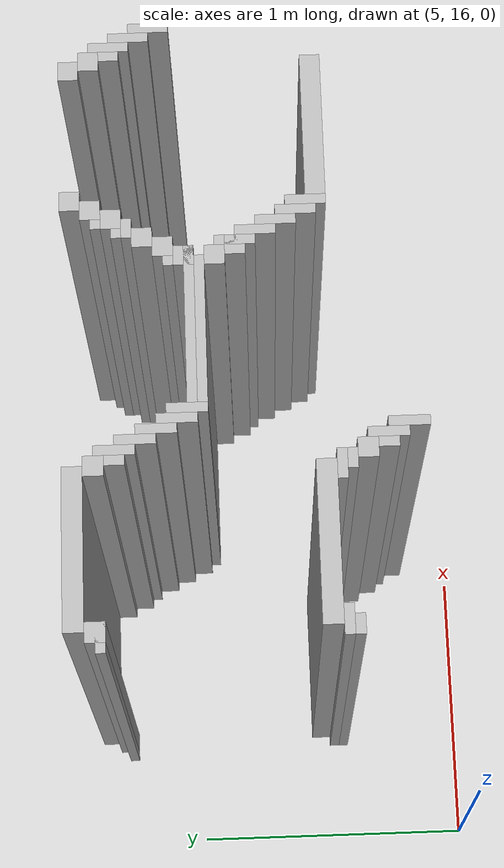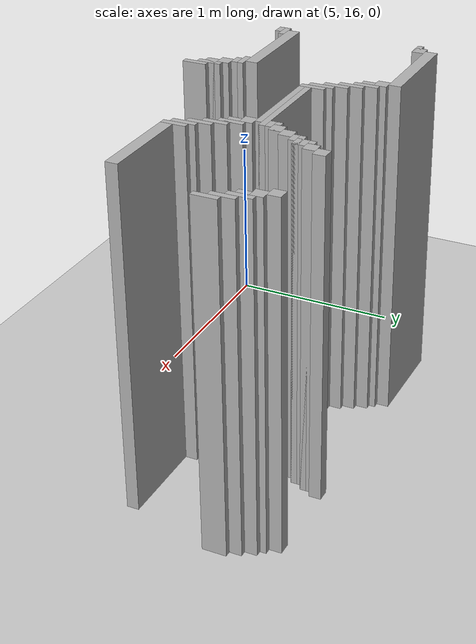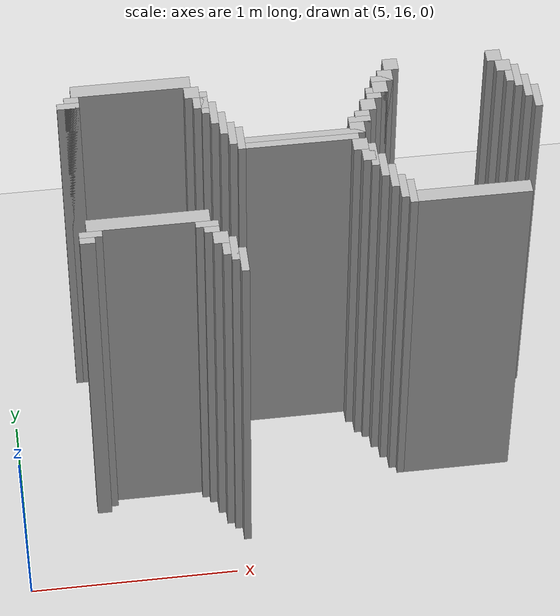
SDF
<sdf version="1.6">
 <world name="slam_world">
  <model name="ground_plane">
   <static>true</static>
   <link name="link">
    <collision name="collision">
     <geometry><plane><normal>0 0 1</normal><size>100 100</size></plane></geometry>
    </collision>
    <visual name="visual">
     <geometry><plane><normal>0 0 1</normal><size>100 100</size></plane></geometry>
     <material>
      <ambient>0.8 0.8 0.8 1</ambient>
      <diffuse>0.8 0.8 0.8 1</diffuse>
      <specular>0.8 0.8 0.8 1</specular>
     </material>
    </visual>
   </link>
  </model>
  <model name="wall_3">
   <static>true</static>
   <pose>5.672853828306264 17.366589327146173 1.0 0 0 0</pose>
   <link name="link">
    <collision name="collision">
     <geometry><box><size>0.5568445475638051 0.06960556844547564 2.0</size></box></geometry>
    </collision>
    <visual name="visual">
     <geometry><box><size>0.5568445475638051 0.06960556844547564 2.0</size></box></geometry>
     <material><ambient>0.5 0.5 0.5 1</ambient><diffuse>0.7 0.7 0.7 1</diffuse></material>
    </visual>
   </link>
  </model>
  <model name="wall_4">
   <static>true</static>
   <pose>6.890951276102088 17.366589327146173 1.0 0 0 0</pose>
   <link name="link">
    <collision name="collision">
     <geometry><box><size>0.06960556844547564 0.06960556844547564 2.0</size></box></geometry>
    </collision>
    <visual name="visual">
     <geometry><box><size>0.06960556844547564 0.06960556844547564 2.0</size></box></geometry>
     <material><ambient>0.5 0.5 0.5 1</ambient><diffuse>0.7 0.7 0.7 1</diffuse></material>
    </visual>
   </link>
  </model>
  <model name="wall_5">
   <static>true</static>
   <pose>7.378190255220417 17.366589327146173 1.0 0 0 0</pose>
   <link name="link">
    <collision name="collision">
     <geometry><box><size>0.06960556844547564 0.06960556844547564 2.0</size></box></geometry>
    </collision>
    <visual name="visual">
     <geometry><box><size>0.06960556844547564 0.06960556844547564 2.0</size></box></geometry>
     <material><ambient>0.5 0.5 0.5 1</ambient><diffuse>0.7 0.7 0.7 1</diffuse></material>
    </visual>
   </link>
  </model>
  <model name="wall_17">
   <static>true</static>
   <pose>5.3944315545243615 17.296983758700694 1.0 0 0 0</pose>
   <link name="link">
    <collision name="collision">
     <geometry><box><size>0.06960556844547564 0.06960556844547564 2.0</size></box></geometry>
    </collision>
    <visual name="visual">
     <geometry><box><size>0.06960556844547564 0.06960556844547564 2.0</size></box></geometry>
     <material><ambient>0.5 0.5 0.5 1</ambient><diffuse>0.7 0.7 0.7 1</diffuse></material>
    </visual>
   </link>
  </model>
  <model name="wall_18">
   <static>true</static>
   <pose>5.951276102088166 17.296983758700694 1.0 0 0 0</pose>
   <link name="link">
    <collision name="collision">
     <geometry><box><size>0.06960556844547564 0.06960556844547564 2.0</size></box></geometry>
    </collision>
    <visual name="visual">
     <geometry><box><size>0.06960556844547564 0.06960556844547564 2.0</size></box></geometry>
     <material><ambient>0.5 0.5 0.5 1</ambient><diffuse>0.7 0.7 0.7 1</diffuse></material>
    </visual>
   </link>
  </model>
  <model name="wall_19">
   <static>true</static>
   <pose>6.85614849187935 17.296983758700694 1.0 0 0 0</pose>
   <link name="link">
    <collision name="collision">
     <geometry><box><size>0.06960556844547564 0.06960556844547564 2.0</size></box></geometry>
    </collision>
    <visual name="visual">
     <geometry><box><size>0.06960556844547564 0.06960556844547564 2.0</size></box></geometry>
     <material><ambient>0.5 0.5 0.5 1</ambient><diffuse>0.7 0.7 0.7 1</diffuse></material>
    </visual>
   </link>
  </model>
  <model name="wall_20">
   <static>true</static>
   <pose>7.412993039443156 17.296983758700694 1.0 0 0 0</pose>
   <link name="link">
    <collision name="collision">
     <geometry><box><size>0.06960556844547564 0.06960556844547564 2.0</size></box></geometry>
    </collision>
    <visual name="visual">
     <geometry><box><size>0.06960556844547564 0.06960556844547564 2.0</size></box></geometry>
     <material><ambient>0.5 0.5 0.5 1</ambient><diffuse>0.7 0.7 0.7 1</diffuse></material>
    </visual>
   </link>
  </model>
  <model name="wall_37">
   <static>true</static>
   <pose>5.377030162412993 17.279582366589327 1.0 0 0 0</pose>
   <link name="link">
    <collision name="collision">
     <geometry><box><size>0.10440835266821345 0.03480278422273782 2.0</size></box></geometry>
    </collision>
    <visual name="visual">
     <geometry><box><size>0.10440835266821345 0.03480278422273782 2.0</size></box></geometry>
     <material><ambient>0.5 0.5 0.5 1</ambient><diffuse>0.7 0.7 0.7 1</diffuse></material>
    </visual>
   </link>
  </model>
  <model name="wall_38">
   <static>true</static>
   <pose>6.003480278422273 17.22737819025522 1.0 0 0 0</pose>
   <link name="link">
    <collision name="collision">
     <geometry><box><size>0.03480278422273782 0.13921113689095127 2.0</size></box></geometry>
    </collision>
    <visual name="visual">
     <geometry><box><size>0.03480278422273782 0.13921113689095127 2.0</size></box></geometry>
     <material><ambient>0.5 0.5 0.5 1</ambient><diffuse>0.7 0.7 0.7 1</diffuse></material>
    </visual>
   </link>
  </model>
  <model name="wall_39">
   <static>true</static>
   <pose>6.838747099767981 17.279582366589327 1.0 0 0 0</pose>
   <link name="link">
    <collision name="collision">
     <geometry><box><size>0.10440835266821345 0.03480278422273782 2.0</size></box></geometry>
    </collision>
    <visual name="visual">
     <geometry><box><size>0.10440835266821345 0.03480278422273782 2.0</size></box></geometry>
     <material><ambient>0.5 0.5 0.5 1</ambient><diffuse>0.7 0.7 0.7 1</diffuse></material>
    </visual>
   </link>
  </model>
  <model name="wall_40">
   <static>true</static>
   <pose>7.465197215777262 17.22737819025522 1.0 0 0 0</pose>
   <link name="link">
    <collision name="collision">
     <geometry><box><size>0.03480278422273782 0.13921113689095127 2.0</size></box></geometry>
    </collision>
    <visual name="visual">
     <geometry><box><size>0.03480278422273782 0.13921113689095127 2.0</size></box></geometry>
     <material><ambient>0.5 0.5 0.5 1</ambient><diffuse>0.7 0.7 0.7 1</diffuse></material>
    </visual>
   </link>
  </model>
  <model name="wall_58">
   <static>true</static>
   <pose>5.986078886310905 17.22737819025522 1.0 0 0 0</pose>
   <link name="link">
    <collision name="collision">
     <geometry><box><size>0.06960556844547564 0.06960556844547564 2.0</size></box></geometry>
    </collision>
    <visual name="visual">
     <geometry><box><size>0.06960556844547564 0.06960556844547564 2.0</size></box></geometry>
     <material><ambient>0.5 0.5 0.5 1</ambient><diffuse>0.7 0.7 0.7 1</diffuse></material>
    </visual>
   </link>
  </model>
  <model name="wall_59">
   <static>true</static>
   <pose>6.821345707656612 17.22737819025522 1.0 0 0 0</pose>
   <link name="link">
    <collision name="collision">
     <geometry><box><size>0.06960556844547564 0.06960556844547564 2.0</size></box></geometry>
    </collision>
    <visual name="visual">
     <geometry><box><size>0.06960556844547564 0.06960556844547564 2.0</size></box></geometry>
     <material><ambient>0.5 0.5 0.5 1</ambient><diffuse>0.7 0.7 0.7 1</diffuse></material>
    </visual>
   </link>
  </model>
  <model name="wall_60">
   <static>true</static>
   <pose>7.447795823665893 17.22737819025522 1.0 0 0 0</pose>
   <link name="link">
    <collision name="collision">
     <geometry><box><size>0.06960556844547564 0.06960556844547564 2.0</size></box></geometry>
    </collision>
    <visual name="visual">
     <geometry><box><size>0.06960556844547564 0.06960556844547564 2.0</size></box></geometry>
     <material><ambient>0.5 0.5 0.5 1</ambient><diffuse>0.7 0.7 0.7 1</diffuse></material>
    </visual>
   </link>
  </model>
  <model name="wall_78">
   <static>true</static>
   <pose>6.038283062645012 17.157772621809745 1.0 0 0 0</pose>
   <link name="link">
    <collision name="collision">
     <geometry><box><size>0.03480278422273782 0.13921113689095127 2.0</size></box></geometry>
    </collision>
    <visual name="visual">
     <geometry><box><size>0.03480278422273782 0.13921113689095127 2.0</size></box></geometry>
     <material><ambient>0.5 0.5 0.5 1</ambient><diffuse>0.7 0.7 0.7 1</diffuse></material>
    </visual>
   </link>
  </model>
  <model name="wall_79">
   <static>true</static>
   <pose>6.803944315545244 17.209976798143853 1.0 0 0 0</pose>
   <link name="link">
    <collision name="collision">
     <geometry><box><size>0.10440835266821345 0.03480278422273782 2.0</size></box></geometry>
    </collision>
    <visual name="visual">
     <geometry><box><size>0.10440835266821345 0.03480278422273782 2.0</size></box></geometry>
     <material><ambient>0.5 0.5 0.5 1</ambient><diffuse>0.7 0.7 0.7 1</diffuse></material>
    </visual>
   </link>
  </model>
  <model name="wall_80">
   <static>true</static>
   <pose>7.5 17.157772621809745 1.0 0 0 0</pose>
   <link name="link">
    <collision name="collision">
     <geometry><box><size>0.03480278422273782 0.13921113689095127 2.0</size></box></geometry>
    </collision>
    <visual name="visual">
     <geometry><box><size>0.03480278422273782 0.13921113689095127 2.0</size></box></geometry>
     <material><ambient>0.5 0.5 0.5 1</ambient><diffuse>0.7 0.7 0.7 1</diffuse></material>
    </visual>
   </link>
  </model>
  <model name="wall_95">
   <static>true</static>
   <pose>6.786542923433874 17.17517401392111 1.0 0 0 0</pose>
   <link name="link">
    <collision name="collision">
     <geometry><box><size>0.06960556844547564 0.03480278422273782 2.0</size></box></geometry>
    </collision>
    <visual name="visual">
     <geometry><box><size>0.06960556844547564 0.03480278422273782 2.0</size></box></geometry>
     <material><ambient>0.5 0.5 0.5 1</ambient><diffuse>0.7 0.7 0.7 1</diffuse></material>
    </visual>
   </link>
  </model>
  <model name="wall_108">
   <static>true</static>
   <pose>6.073085846867749 17.08816705336427 1.0 0 0 0</pose>
   <link name="link">
    <collision name="collision">
     <geometry><box><size>0.03480278422273782 0.13921113689095127 2.0</size></box></geometry>
    </collision>
    <visual name="visual">
     <geometry><box><size>0.03480278422273782 0.13921113689095127 2.0</size></box></geometry>
     <material><ambient>0.5 0.5 0.5 1</ambient><diffuse>0.7 0.7 0.7 1</diffuse></material>
    </visual>
   </link>
  </model>
  <model name="wall_109">
   <static>true</static>
   <pose>6.751740139211137 17.122969837587007 1.0 0 0 0</pose>
   <link name="link">
    <collision name="collision">
     <geometry><box><size>0.06960556844547564 0.06960556844547564 2.0</size></box></geometry>
    </collision>
    <visual name="visual">
     <geometry><box><size>0.06960556844547564 0.06960556844547564 2.0</size></box></geometry>
     <material><ambient>0.5 0.5 0.5 1</ambient><diffuse>0.7 0.7 0.7 1</diffuse></material>
    </visual>
   </link>
  </model>
  <model name="wall_110">
   <static>true</static>
   <pose>7.534802784222737 17.08816705336427 1.0 0 0 0</pose>
   <link name="link">
    <collision name="collision">
     <geometry><box><size>0.03480278422273782 0.13921113689095127 2.0</size></box></geometry>
    </collision>
    <visual name="visual">
     <geometry><box><size>0.03480278422273782 0.13921113689095127 2.0</size></box></geometry>
     <material><ambient>0.5 0.5 0.5 1</ambient><diffuse>0.7 0.7 0.7 1</diffuse></material>
    </visual>
   </link>
  </model>
  <model name="wall_128">
   <static>true</static>
   <pose>6.107888631090487 17.01856148491879 1.0 0 0 0</pose>
   <link name="link">
    <collision name="collision">
     <geometry><box><size>0.03480278422273782 0.13921113689095127 2.0</size></box></geometry>
    </collision>
    <visual name="visual">
     <geometry><box><size>0.03480278422273782 0.13921113689095127 2.0</size></box></geometry>
     <material><ambient>0.5 0.5 0.5 1</ambient><diffuse>0.7 0.7 0.7 1</diffuse></material>
    </visual>
   </link>
  </model>
  <model name="wall_129">
   <static>true</static>
   <pose>6.716937354988398 17.053364269141532 1.0 0 0 0</pose>
   <link name="link">
    <collision name="collision">
     <geometry><box><size>0.06960556844547564 0.06960556844547564 2.0</size></box></geometry>
    </collision>
    <visual name="visual">
     <geometry><box><size>0.06960556844547564 0.06960556844547564 2.0</size></box></geometry>
     <material><ambient>0.5 0.5 0.5 1</ambient><diffuse>0.7 0.7 0.7 1</diffuse></material>
    </visual>
   </link>
  </model>
  <model name="wall_148">
   <static>true</static>
   <pose>6.142691415313225 16.983758700696054 1.0 0 0 0</pose>
   <link name="link">
    <collision name="collision">
     <geometry><box><size>0.03480278422273782 0.13921113689095127 2.0</size></box></geometry>
    </collision>
    <visual name="visual">
     <geometry><box><size>0.03480278422273782 0.13921113689095127 2.0</size></box></geometry>
     <material><ambient>0.5 0.5 0.5 1</ambient><diffuse>0.7 0.7 0.7 1</diffuse></material>
    </visual>
   </link>
  </model>
  <model name="wall_149">
   <static>true</static>
   <pose>6.69953596287703 17.035962877030162 1.0 0 0 0</pose>
   <link name="link">
    <collision name="collision">
     <geometry><box><size>0.10440835266821345 0.03480278422273782 2.0</size></box></geometry>
    </collision>
    <visual name="visual">
     <geometry><box><size>0.10440835266821345 0.03480278422273782 2.0</size></box></geometry>
     <material><ambient>0.5 0.5 0.5 1</ambient><diffuse>0.7 0.7 0.7 1</diffuse></material>
    </visual>
   </link>
  </model>
  <model name="wall_165">
   <static>true</static>
   <pose>6.682134570765661 16.983758700696054 1.0 0 0 0</pose>
   <link name="link">
    <collision name="collision">
     <geometry><box><size>0.06960556844547564 0.06960556844547564 2.0</size></box></geometry>
    </collision>
    <visual name="visual">
     <geometry><box><size>0.06960556844547564 0.06960556844547564 2.0</size></box></geometry>
     <material><ambient>0.5 0.5 0.5 1</ambient><diffuse>0.7 0.7 0.7 1</diffuse></material>
    </visual>
   </link>
  </model>
  <model name="wall_175">
   <static>true</static>
   <pose>6.438515081206496 16.966357308584687 1.0 0 0 0</pose>
   <link name="link">
    <collision name="collision">
     <geometry><box><size>0.5568445475638051 0.03480278422273782 2.0</size></box></geometry>
    </collision>
    <visual name="visual">
     <geometry><box><size>0.5568445475638051 0.03480278422273782 2.0</size></box></geometry>
     <material><ambient>0.5 0.5 0.5 1</ambient><diffuse>0.7 0.7 0.7 1</diffuse></material>
    </visual>
   </link>
  </model>
  <model name="wall_186">
   <static>true</static>
   <pose>6.421113689095128 16.93155452436195 1.0 0 0 0</pose>
   <link name="link">
    <collision name="collision">
     <geometry><box><size>0.5220417633410672 0.03480278422273782 2.0</size></box></geometry>
    </collision>
    <visual name="visual">
     <geometry><box><size>0.5220417633410672 0.03480278422273782 2.0</size></box></geometry>
     <material><ambient>0.5 0.5 0.5 1</ambient><diffuse>0.7 0.7 0.7 1</diffuse></material>
    </visual>
   </link>
  </model>
  <model name="wall_196">
   <static>true</static>
   <pose>6.682134570765661 16.87935034802784 1.0 0 0 0</pose>
   <link name="link">
    <collision name="collision">
     <geometry><box><size>0.06960556844547564 0.06960556844547564 2.0</size></box></geometry>
    </collision>
    <visual name="visual">
     <geometry><box><size>0.06960556844547564 0.06960556844547564 2.0</size></box></geometry>
     <material><ambient>0.5 0.5 0.5 1</ambient><diffuse>0.7 0.7 0.7 1</diffuse></material>
    </visual>
   </link>
  </model>
  <model name="wall_205">
   <static>true</static>
   <pose>6.734338747099768 16.809744779582367 1.0 0 0 0</pose>
   <link name="link">
    <collision name="collision">
     <geometry><box><size>0.03480278422273782 0.13921113689095127 2.0</size></box></geometry>
    </collision>
    <visual name="visual">
     <geometry><box><size>0.03480278422273782 0.13921113689095127 2.0</size></box></geometry>
     <material><ambient>0.5 0.5 0.5 1</ambient><diffuse>0.7 0.7 0.7 1</diffuse></material>
    </visual>
   </link>
  </model>
  <model name="wall_214">
   <static>true</static>
   <pose>6.716937354988398 16.809744779582367 1.0 0 0 0</pose>
   <link name="link">
    <collision name="collision">
     <geometry><box><size>0.06960556844547564 0.06960556844547564 2.0</size></box></geometry>
    </collision>
    <visual name="visual">
     <geometry><box><size>0.06960556844547564 0.06960556844547564 2.0</size></box></geometry>
     <material><ambient>0.5 0.5 0.5 1</ambient><diffuse>0.7 0.7 0.7 1</diffuse></material>
    </visual>
   </link>
  </model>
  <model name="wall_223">
   <static>true</static>
   <pose>6.769141531322505 16.74013921113689 1.0 0 0 0</pose>
   <link name="link">
    <collision name="collision">
     <geometry><box><size>0.03480278422273782 0.13921113689095127 2.0</size></box></geometry>
    </collision>
    <visual name="visual">
     <geometry><box><size>0.03480278422273782 0.13921113689095127 2.0</size></box></geometry>
     <material><ambient>0.5 0.5 0.5 1</ambient><diffuse>0.7 0.7 0.7 1</diffuse></material>
    </visual>
   </link>
  </model>
  <model name="wall_236">
   <static>true</static>
   <pose>6.803944315545244 16.670533642691414 1.0 0 0 0</pose>
   <link name="link">
    <collision name="collision">
     <geometry><box><size>0.03480278422273782 0.13921113689095127 2.0</size></box></geometry>
    </collision>
    <visual name="visual">
     <geometry><box><size>0.03480278422273782 0.13921113689095127 2.0</size></box></geometry>
     <material><ambient>0.5 0.5 0.5 1</ambient><diffuse>0.7 0.7 0.7 1</diffuse></material>
    </visual>
   </link>
  </model>
  <model name="wall_245">
   <static>true</static>
   <pose>6.838747099767981 16.60092807424594 1.0 0 0 0</pose>
   <link name="link">
    <collision name="collision">
     <geometry><box><size>0.03480278422273782 0.13921113689095127 2.0</size></box></geometry>
    </collision>
    <visual name="visual">
     <geometry><box><size>0.03480278422273782 0.13921113689095127 2.0</size></box></geometry>
     <material><ambient>0.5 0.5 0.5 1</ambient><diffuse>0.7 0.7 0.7 1</diffuse></material>
    </visual>
   </link>
  </model>
  <model name="wall_254">
   <static>true</static>
   <pose>6.8735498839907185 16.5661252900232 1.0 0 0 0</pose>
   <link name="link">
    <collision name="collision">
     <geometry><box><size>0.03480278422273782 0.13921113689095127 2.0</size></box></geometry>
    </collision>
    <visual name="visual">
     <geometry><box><size>0.03480278422273782 0.13921113689095127 2.0</size></box></geometry>
     <material><ambient>0.5 0.5 0.5 1</ambient><diffuse>0.7 0.7 0.7 1</diffuse></material>
    </visual>
   </link>
  </model>
  <model name="wall_268">
   <static>true</static>
   <pose>5.672853828306264 16.531322505800464 1.0 0 0 0</pose>
   <link name="link">
    <collision name="collision">
     <geometry><box><size>0.5568445475638051 0.06960556844547564 2.0</size></box></geometry>
    </collision>
    <visual name="visual">
     <geometry><box><size>0.5568445475638051 0.06960556844547564 2.0</size></box></geometry>
     <material><ambient>0.5 0.5 0.5 1</ambient><diffuse>0.7 0.7 0.7 1</diffuse></material>
    </visual>
   </link>
  </model>
  <model name="wall_269">
   <static>true</static>
   <pose>7.151972157772621 16.531322505800464 1.0 0 0 0</pose>
   <link name="link">
    <collision name="collision">
     <geometry><box><size>0.5220417633410672 0.06960556844547564 2.0</size></box></geometry>
    </collision>
    <visual name="visual">
     <geometry><box><size>0.5220417633410672 0.06960556844547564 2.0</size></box></geometry>
     <material><ambient>0.5 0.5 0.5 1</ambient><diffuse>0.7 0.7 0.7 1</diffuse></material>
    </visual>
   </link>
  </model>
  <model name="wall_285">
   <static>true</static>
   <pose>5.41183294663573 16.479118329466356 1.0 0 0 0</pose>
   <link name="link">
    <collision name="collision">
     <geometry><box><size>0.10440835266821345 0.03480278422273782 2.0</size></box></geometry>
    </collision>
    <visual name="visual">
     <geometry><box><size>0.10440835266821345 0.03480278422273782 2.0</size></box></geometry>
     <material><ambient>0.5 0.5 0.5 1</ambient><diffuse>0.7 0.7 0.7 1</diffuse></material>
    </visual>
   </link>
  </model>
  <model name="wall_286">
   <static>true</static>
   <pose>5.933874709976798 16.479118329466356 1.0 0 0 0</pose>
   <link name="link">
    <collision name="collision">
     <geometry><box><size>0.10440835266821345 0.03480278422273782 2.0</size></box></geometry>
    </collision>
    <visual name="visual">
     <geometry><box><size>0.10440835266821345 0.03480278422273782 2.0</size></box></geometry>
     <material><ambient>0.5 0.5 0.5 1</ambient><diffuse>0.7 0.7 0.7 1</diffuse></material>
    </visual>
   </link>
  </model>
  <model name="wall_296">
   <static>true</static>
   <pose>5.3944315545243615 16.44431554524362 1.0 0 0 0</pose>
   <link name="link">
    <collision name="collision">
     <geometry><box><size>0.06960556844547564 0.03480278422273782 2.0</size></box></geometry>
    </collision>
    <visual name="visual">
     <geometry><box><size>0.06960556844547564 0.03480278422273782 2.0</size></box></geometry>
     <material><ambient>0.5 0.5 0.5 1</ambient><diffuse>0.7 0.7 0.7 1</diffuse></material>
    </visual>
   </link>
  </model>
  <model name="wall_297">
   <static>true</static>
   <pose>5.951276102088166 16.44431554524362 1.0 0 0 0</pose>
   <link name="link">
    <collision name="collision">
     <geometry><box><size>0.06960556844547564 0.03480278422273782 2.0</size></box></geometry>
    </collision>
    <visual name="visual">
     <geometry><box><size>0.06960556844547564 0.03480278422273782 2.0</size></box></geometry>
     <material><ambient>0.5 0.5 0.5 1</ambient><diffuse>0.7 0.7 0.7 1</diffuse></material>
    </visual>
   </link>
  </model>
  <model name="wall_309">
   <static>true</static>
   <pose>5.986078886310905 16.39211136890951 1.0 0 0 0</pose>
   <link name="link">
    <collision name="collision">
     <geometry><box><size>0.06960556844547564 0.06960556844547564 2.0</size></box></geometry>
    </collision>
    <visual name="visual">
     <geometry><box><size>0.06960556844547564 0.06960556844547564 2.0</size></box></geometry>
     <material><ambient>0.5 0.5 0.5 1</ambient><diffuse>0.7 0.7 0.7 1</diffuse></material>
    </visual>
   </link>
  </model>
  <model name="wall_323">
   <static>true</static>
   <pose>6.038283062645012 16.322505800464036 1.0 0 0 0</pose>
   <link name="link">
    <collision name="collision">
     <geometry><box><size>0.03480278422273782 0.13921113689095127 2.0</size></box></geometry>
    </collision>
    <visual name="visual">
     <geometry><box><size>0.03480278422273782 0.13921113689095127 2.0</size></box></geometry>
     <material><ambient>0.5 0.5 0.5 1</ambient><diffuse>0.7 0.7 0.7 1</diffuse></material>
    </visual>
   </link>
  </model>
  <model name="wall_337">
   <static>true</static>
   <pose>6.020881670533642 16.322505800464036 1.0 0 0 0</pose>
   <link name="link">
    <collision name="collision">
     <geometry><box><size>0.06960556844547564 0.06960556844547564 2.0</size></box></geometry>
    </collision>
    <visual name="visual">
     <geometry><box><size>0.06960556844547564 0.06960556844547564 2.0</size></box></geometry>
     <material><ambient>0.5 0.5 0.5 1</ambient><diffuse>0.7 0.7 0.7 1</diffuse></material>
    </visual>
   </link>
  </model>
  <model name="wall_351">
   <static>true</static>
   <pose>6.073085846867749 16.25290023201856 1.0 0 0 0</pose>
   <link name="link">
    <collision name="collision">
     <geometry><box><size>0.03480278422273782 0.13921113689095127 2.0</size></box></geometry>
    </collision>
    <visual name="visual">
     <geometry><box><size>0.03480278422273782 0.13921113689095127 2.0</size></box></geometry>
     <material><ambient>0.5 0.5 0.5 1</ambient><diffuse>0.7 0.7 0.7 1</diffuse></material>
    </visual>
   </link>
  </model>
 </world>
</sdf>
